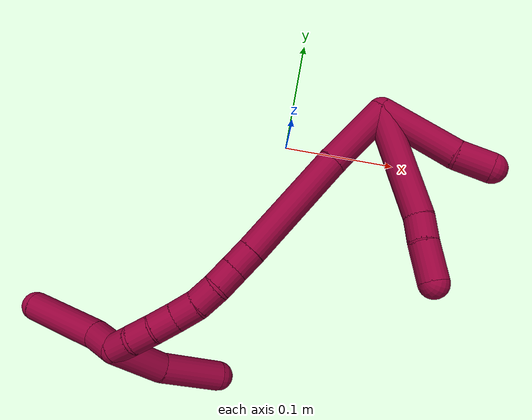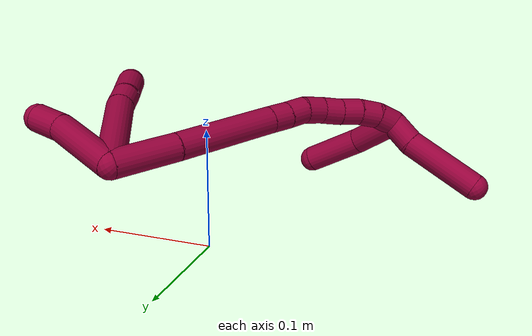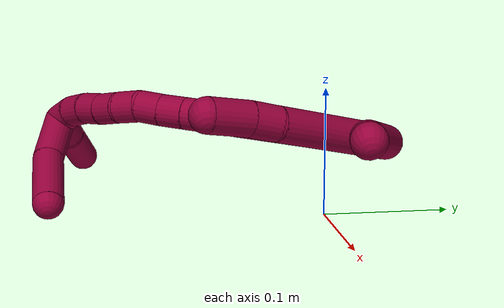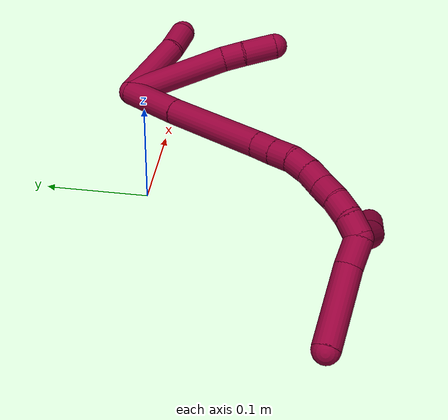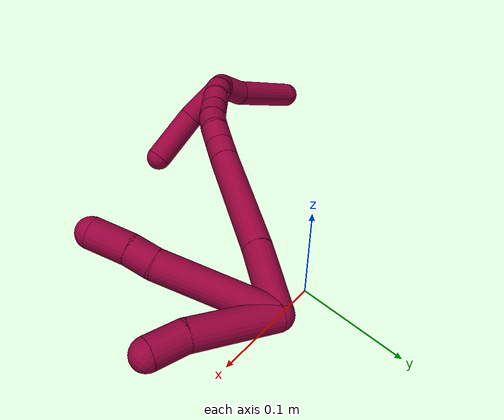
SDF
<sdf version="1.7">
 <world name="default">
  <model name="8">
   <static>0</static>
   <link name="8">
    <collision name="collision-cylinder-e_1_2_8">
     <pose>0.017107 -0.043863 -0.011558 1.82845 0.36065 0.464596</pose>
     <geometry><cylinder><radius>0.0125</radius><length>0.096957</length></cylinder></geometry>
     <surface>
      <friction><ode><mu>1.16</mu><mu2>1.16</mu2><slip1>0</slip1><slip2>0</slip2></ode></friction>
      <contact><ode><kp>1e+06</kp><kd>1</kd><max_vel>0</max_vel><min_depth>0.001</min_depth></ode></contact>
     </surface>
    </collision>
    <visual name="visual-cylinder-e_1_2_8">
     <pose>0.017107 -0.043863 -0.011558 1.82845 0.36065 0.464596</pose>
     <geometry><cylinder><radius>0.0125</radius><length>0.096957</length></cylinder></geometry>
     <material><ambient>0.584314 0 0.227451 1</ambient></material>
    </visual>
    <collision name="collision-cylinder-e_2_8_9">
     <pose>0.037082 -0.097792 -0.024255 1.68344 0.275811 0.308276</pose>
     <geometry><cylinder><radius>0.0125</radius><length>0.021057</length></cylinder></geometry>
     <surface>
      <friction><ode><mu>1.16</mu><mu2>1.16</mu2><slip1>0</slip1><slip2>0</slip2></ode></friction>
      <contact><ode><kp>1e+06</kp><kd>1</kd><max_vel>0</max_vel><min_depth>0.001</min_depth></ode></contact>
     </surface>
    </collision>
    <visual name="visual-cylinder-e_2_8_9">
     <pose>0.037082 -0.097792 -0.024255 1.68344 0.275811 0.308276</pose>
     <geometry><cylinder><radius>0.0125</radius><length>0.021057</length></cylinder></geometry>
     <material><ambient>0.584314 0 0.227451 1</ambient></material>
    </visual>
    <collision name="collision-cylinder-e_3_9_6">
     <pose>0.04399 -0.122901 -0.029019 1.80728 0.255432 0.323231</pose>
     <geometry><cylinder><radius>0.0125</radius><length>0.031985</length></cylinder></geometry>
     <surface>
      <friction><ode><mu>1.16</mu><mu2>1.16</mu2><slip1>0</slip1><slip2>0</slip2></ode></friction>
      <contact><ode><kp>1e+06</kp><kd>1</kd><max_vel>0</max_vel><min_depth>0.001</min_depth></ode></contact>
     </surface>
    </collision>
    <visual name="visual-cylinder-e_3_9_6">
     <pose>0.04399 -0.122901 -0.029019 1.80728 0.255432 0.323231</pose>
     <geometry><cylinder><radius>0.0125</radius><length>0.031985</length></cylinder></geometry>
     <material><ambient>0.584314 0 0.227451 1</ambient></material>
    </visual>
    <collision name="collision-cylinder-e_1_2_10">
     <pose>0.022282 -0.015617 -0.022817 2.5414 0.678297 1.70149</pose>
     <geometry><cylinder><radius>0.0125</radius><length>0.071021</length></cylinder></geometry>
     <surface>
      <friction><ode><mu>1.16</mu><mu2>1.16</mu2><slip1>0</slip1><slip2>0</slip2></ode></friction>
      <contact><ode><kp>1e+06</kp><kd>1</kd><max_vel>0</max_vel><min_depth>0.001</min_depth></ode></contact>
     </surface>
    </collision>
    <visual name="visual-cylinder-e_1_2_10">
     <pose>0.022282 -0.015617 -0.022817 2.5414 0.678297 1.70149</pose>
     <geometry><cylinder><radius>0.0125</radius><length>0.071021</length></cylinder></geometry>
     <material><ambient>0.584314 0 0.227451 1</ambient></material>
    </visual>
    <collision name="collision-cylinder-e_2_10_5">
     <pose>0.053468 -0.034896 -0.056462 2.81539 0.661835 2.24816</pose>
     <geometry><cylinder><radius>0.0125</radius><length>0.028979</length></cylinder></geometry>
     <surface>
      <friction><ode><mu>1.16</mu><mu2>1.16</mu2><slip1>0</slip1><slip2>0</slip2></ode></friction>
      <contact><ode><kp>1e+06</kp><kd>1</kd><max_vel>0</max_vel><min_depth>0.001</min_depth></ode></contact>
     </surface>
    </collision>
    <visual name="visual-cylinder-e_2_10_5">
     <pose>0.053468 -0.034896 -0.056462 2.81539 0.661835 2.24816</pose>
     <geometry><cylinder><radius>0.0125</radius><length>0.028979</length></cylinder></geometry>
     <material><ambient>0.584314 0 0.227451 1</ambient></material>
    </visual>
    <collision name="collision-cylinder-e_1_2_11">
     <pose>-0.009168 -0.024946 0.014816 1.03484 -0.306063 -0.175118</pose>
     <geometry><cylinder><radius>0.0125</radius><length>0.060856</length></cylinder></geometry>
     <surface>
      <friction><ode><mu>1.16</mu><mu2>1.16</mu2><slip1>0</slip1><slip2>0</slip2></ode></friction>
      <contact><ode><kp>1e+06</kp><kd>1</kd><max_vel>0</max_vel><min_depth>0.001</min_depth></ode></contact>
     </surface>
    </collision>
    <visual name="visual-cylinder-e_1_2_11">
     <pose>-0.009168 -0.024946 0.014816 1.03484 -0.306063 -0.175118</pose>
     <geometry><cylinder><radius>0.0125</radius><length>0.060856</length></cylinder></geometry>
     <material><ambient>0.584314 0 0.227451 1</ambient></material>
    </visual>
    <collision name="collision-cylinder-e_2_11_12">
     <pose>-0.032119 -0.091762 0.052059 1.07907 -0.282412 -0.169831</pose>
     <geometry><cylinder><radius>0.0125</radius><length>0.098915</length></cylinder></geometry>
     <surface>
      <friction><ode><mu>1.16</mu><mu2>1.16</mu2><slip1>0</slip1><slip2>0</slip2></ode></friction>
      <contact><ode><kp>1e+06</kp><kd>1</kd><max_vel>0</max_vel><min_depth>0.001</min_depth></ode></contact>
     </surface>
    </collision>
    <visual name="visual-cylinder-e_2_11_12">
     <pose>-0.032119 -0.091762 0.052059 1.07907 -0.282412 -0.169831</pose>
     <geometry><cylinder><radius>0.0125</radius><length>0.098915</length></cylinder></geometry>
     <material><ambient>0.584314 0 0.227451 1</ambient></material>
    </visual>
    <collision name="collision-cylinder-e_3_12_13">
     <pose>-0.048908 -0.141981 0.079256 1.05161 -0.303032 -0.176744</pose>
     <geometry><cylinder><radius>0.0125</radius><length>0.02015</length></cylinder></geometry>
     <surface>
      <friction><ode><mu>1.16</mu><mu2>1.16</mu2><slip1>0</slip1><slip2>0</slip2></ode></friction>
      <contact><ode><kp>1e+06</kp><kd>1</kd><max_vel>0</max_vel><min_depth>0.001</min_depth></ode></contact>
     </surface>
    </collision>
    <visual name="visual-cylinder-e_3_12_13">
     <pose>-0.048908 -0.141981 0.079256 1.05161 -0.303032 -0.176744</pose>
     <geometry><cylinder><radius>0.0125</radius><length>0.02015</length></cylinder></geometry>
     <material><ambient>0.584314 0 0.227451 1</ambient></material>
    </visual>
    <collision name="collision-cylinder-e_4_13_14">
     <pose>-0.054546 -0.158652 0.088927 1.03871 -0.266007 -0.152684</pose>
     <geometry><cylinder><radius>0.0125</radius><length>0.020019</length></cylinder></geometry>
     <surface>
      <friction><ode><mu>1.16</mu><mu2>1.16</mu2><slip1>0</slip1><slip2>0</slip2></ode></friction>
      <contact><ode><kp>1e+06</kp><kd>1</kd><max_vel>0</max_vel><min_depth>0.001</min_depth></ode></contact>
     </surface>
    </collision>
    <visual name="visual-cylinder-e_4_13_14">
     <pose>-0.054546 -0.158652 0.088927 1.03871 -0.266007 -0.152684</pose>
     <geometry><cylinder><radius>0.0125</radius><length>0.020019</length></cylinder></geometry>
     <material><ambient>0.584314 0 0.227451 1</ambient></material>
    </visual>
    <collision name="collision-cylinder-e_5_14_15">
     <pose>-0.062134 -0.174545 0.098153 1.05156 -0.516898 -0.304424</pose>
     <geometry><cylinder><radius>0.0125</radius><length>0.02006</length></cylinder></geometry>
     <surface>
      <friction><ode><mu>1.16</mu><mu2>1.16</mu2><slip1>0</slip1><slip2>0</slip2></ode></friction>
      <contact><ode><kp>1e+06</kp><kd>1</kd><max_vel>0</max_vel><min_depth>0.001</min_depth></ode></contact>
     </surface>
    </collision>
    <visual name="visual-cylinder-e_5_14_15">
     <pose>-0.062134 -0.174545 0.098153 1.05156 -0.516898 -0.304424</pose>
     <geometry><cylinder><radius>0.0125</radius><length>0.02006</length></cylinder></geometry>
     <material><ambient>0.584314 0 0.227451 1</ambient></material>
    </visual>
    <collision name="collision-cylinder-e_6_15_16">
     <pose>-0.072937 -0.188233 0.107809 0.85427 -0.624423 -0.291734</pose>
     <geometry><cylinder><radius>0.0125</radius><length>0.02</length></cylinder></geometry>
     <surface>
      <friction><ode><mu>1.16</mu><mu2>1.16</mu2><slip1>0</slip1><slip2>0</slip2></ode></friction>
      <contact><ode><kp>1e+06</kp><kd>1</kd><max_vel>0</max_vel><min_depth>0.001</min_depth></ode></contact>
     </surface>
    </collision>
    <visual name="visual-cylinder-e_6_15_16">
     <pose>-0.072937 -0.188233 0.107809 0.85427 -0.624423 -0.291734</pose>
     <geometry><cylinder><radius>0.0125</radius><length>0.02</length></cylinder></geometry>
     <material><ambient>0.584314 0 0.227451 1</ambient></material>
    </visual>
    <collision name="collision-cylinder-e_7_16_17">
     <pose>-0.08397 -0.200414 0.119164 0.788391 -0.545372 -0.231611</pose>
     <geometry><cylinder><radius>0.0125</radius><length>0.02</length></cylinder></geometry>
     <surface>
      <friction><ode><mu>1.16</mu><mu2>1.16</mu2><slip1>0</slip1><slip2>0</slip2></ode></friction>
      <contact><ode><kp>1e+06</kp><kd>1</kd><max_vel>0</max_vel><min_depth>0.001</min_depth></ode></contact>
     </surface>
    </collision>
    <visual name="visual-cylinder-e_7_16_17">
     <pose>-0.08397 -0.200414 0.119164 0.788391 -0.545372 -0.231611</pose>
     <geometry><cylinder><radius>0.0125</radius><length>0.02</length></cylinder></geometry>
     <material><ambient>0.584314 0 0.227451 1</ambient></material>
    </visual>
    <collision name="collision-cylinder-e_8_17_18">
     <pose>-0.095689 -0.211988 0.130386 0.814867 -0.711737 -0.318123</pose>
     <geometry><cylinder><radius>0.0125</radius><length>0.02</length></cylinder></geometry>
     <surface>
      <friction><ode><mu>1.16</mu><mu2>1.16</mu2><slip1>0</slip1><slip2>0</slip2></ode></friction>
      <contact><ode><kp>1e+06</kp><kd>1</kd><max_vel>0</max_vel><min_depth>0.001</min_depth></ode></contact>
     </surface>
    </collision>
    <visual name="visual-cylinder-e_8_17_18">
     <pose>-0.095689 -0.211988 0.130386 0.814867 -0.711737 -0.318123</pose>
     <geometry><cylinder><radius>0.0125</radius><length>0.02</length></cylinder></geometry>
     <material><ambient>0.584314 0 0.227451 1</ambient></material>
    </visual>
    <collision name="collision-cylinder-e_9_18_1">
     <pose>-0.110346 -0.22215 0.139091 0.924347 -0.948531 -0.500722</pose>
     <geometry><cylinder><radius>0.0125</radius><length>0.02</length></cylinder></geometry>
     <surface>
      <friction><ode><mu>1.16</mu><mu2>1.16</mu2><slip1>0</slip1><slip2>0</slip2></ode></friction>
      <contact><ode><kp>1e+06</kp><kd>1</kd><max_vel>0</max_vel><min_depth>0.001</min_depth></ode></contact>
     </surface>
    </collision>
    <visual name="visual-cylinder-e_9_18_1">
     <pose>-0.110346 -0.22215 0.139091 0.924347 -0.948531 -0.500722</pose>
     <geometry><cylinder><radius>0.0125</radius><length>0.02</length></cylinder></geometry>
     <material><ambient>0.584314 0 0.227451 1</ambient></material>
    </visual>
    <collision name="collision-cylinder-e_1_1_19">
     <pose>-0.119683 -0.231424 0.120047 2.93953 -0.052528 -0.507118</pose>
     <geometry><cylinder><radius>0.0125</radius><length>0.046112</length></cylinder></geometry>
     <surface>
      <friction><ode><mu>1.16</mu><mu2>1.16</mu2><slip1>0</slip1><slip2>0</slip2></ode></friction>
      <contact><ode><kp>1e+06</kp><kd>1</kd><max_vel>0</max_vel><min_depth>0.001</min_depth></ode></contact>
     </surface>
    </collision>
    <visual name="visual-cylinder-e_1_1_19">
     <pose>-0.119683 -0.231424 0.120047 2.93953 -0.052528 -0.507118</pose>
     <geometry><cylinder><radius>0.0125</radius><length>0.046112</length></cylinder></geometry>
     <material><ambient>0.584314 0 0.227451 1</ambient></material>
    </visual>
    <collision name="collision-cylinder-e_2_19_4">
     <pose>-0.118964 -0.235746 0.070618 -3.13048 0.071639 -2.83381</pose>
     <geometry><cylinder><radius>0.0125</radius><length>0.053888</length></cylinder></geometry>
     <surface>
      <friction><ode><mu>1.16</mu><mu2>1.16</mu2><slip1>0</slip1><slip2>0</slip2></ode></friction>
      <contact><ode><kp>1e+06</kp><kd>1</kd><max_vel>0</max_vel><min_depth>0.001</min_depth></ode></contact>
     </surface>
    </collision>
    <visual name="visual-cylinder-e_2_19_4">
     <pose>-0.118964 -0.235746 0.070618 -3.13048 0.071639 -2.83381</pose>
     <geometry><cylinder><radius>0.0125</radius><length>0.053888</length></cylinder></geometry>
     <material><ambient>0.584314 0 0.227451 1</ambient></material>
    </visual>
    <collision name="collision-cylinder-e_1_1_20">
     <pose>-0.130401 -0.222714 0.146755 -0.777635 -1.11634 0.50086</pose>
     <geometry><cylinder><radius>0.0125</radius><length>0.026553</length></cylinder></geometry>
     <surface>
      <friction><ode><mu>1.16</mu><mu2>1.16</mu2><slip1>0</slip1><slip2>0</slip2></ode></friction>
      <contact><ode><kp>1e+06</kp><kd>1</kd><max_vel>0</max_vel><min_depth>0.001</min_depth></ode></contact>
     </surface>
    </collision>
    <visual name="visual-cylinder-e_1_1_20">
     <pose>-0.130401 -0.222714 0.146755 -0.777635 -1.11634 0.50086</pose>
     <geometry><cylinder><radius>0.0125</radius><length>0.026553</length></cylinder></geometry>
     <material><ambient>0.584314 0 0.227451 1</ambient></material>
    </visual>
    <collision name="collision-cylinder-e_2_20_3">
     <pose>-0.172783 -0.210854 0.169904 -0.388337 -0.977756 0.208452</pose>
     <geometry><cylinder><radius>0.0125</radius><length>0.073447</length></cylinder></geometry>
     <surface>
      <friction><ode><mu>1.16</mu><mu2>1.16</mu2><slip1>0</slip1><slip2>0</slip2></ode></friction>
      <contact><ode><kp>1e+06</kp><kd>1</kd><max_vel>0</max_vel><min_depth>0.001</min_depth></ode></contact>
     </surface>
    </collision>
    <visual name="visual-cylinder-e_2_20_3">
     <pose>-0.172783 -0.210854 0.169904 -0.388337 -0.977756 0.208452</pose>
     <geometry><cylinder><radius>0.0125</radius><length>0.073447</length></cylinder></geometry>
     <material><ambient>0.584314 0 0.227451 1</ambient></material>
    </visual>
    <collision name="collision-sphere-3">
     <pose>-0.203235 -0.203082 0.1889 0 -0 0</pose>
     <geometry><sphere><radius>0.0125</radius></sphere></geometry>
     <surface>
      <friction><ode><mu>1.16</mu><mu2>1.16</mu2><slip1>0</slip1><slip2>0</slip2></ode></friction>
      <contact><ode><kp>1e+06</kp><kd>1</kd><max_vel>0</max_vel><min_depth>0.001</min_depth></ode></contact>
     </surface>
    </collision>
    <visual name="visual-sphere-3">
     <pose>-0.203235 -0.203082 0.1889 0 -0 0</pose>
     <geometry><sphere><radius>0.0125</radius></sphere></geometry>
     <material><ambient>0.584314 0 0.227451 1</ambient></material>
    </visual>
    <collision name="collision-sphere-20">
     <pose>-0.14233 -0.218625 0.150908 0 -0 0</pose>
     <geometry><sphere><radius>0.0125</radius></sphere></geometry>
     <surface>
      <friction><ode><mu>1.16</mu><mu2>1.16</mu2><slip1>0</slip1><slip2>0</slip2></ode></friction>
      <contact><ode><kp>1e+06</kp><kd>1</kd><max_vel>0</max_vel><min_depth>0.001</min_depth></ode></contact>
     </surface>
    </collision>
    <visual name="visual-sphere-20">
     <pose>-0.14233 -0.218625 0.150908 0 -0 0</pose>
     <geometry><sphere><radius>0.0125</radius></sphere></geometry>
     <material><ambient>0.584314 0 0.227451 1</ambient></material>
    </visual>
    <collision name="collision-sphere-4">
     <pose>-0.117036 -0.235447 0.043744 0 -0 0</pose>
     <geometry><sphere><radius>0.0125</radius></sphere></geometry>
     <surface>
      <friction><ode><mu>1.16</mu><mu2>1.16</mu2><slip1>0</slip1><slip2>0</slip2></ode></friction>
      <contact><ode><kp>1e+06</kp><kd>1</kd><max_vel>0</max_vel><min_depth>0.001</min_depth></ode></contact>
     </surface>
    </collision>
    <visual name="visual-sphere-4">
     <pose>-0.117036 -0.235447 0.043744 0 -0 0</pose>
     <geometry><sphere><radius>0.0125</radius></sphere></geometry>
     <material><ambient>0.584314 0 0.227451 1</ambient></material>
    </visual>
    <collision name="collision-sphere-5">
     <pose>0.062373 -0.038559 -0.06729 0 -0 0</pose>
     <geometry><sphere><radius>0.0125</radius></sphere></geometry>
     <surface>
      <friction><ode><mu>1.16</mu><mu2>1.16</mu2><slip1>0</slip1><slip2>0</slip2></ode></friction>
      <contact><ode><kp>1e+06</kp><kd>1</kd><max_vel>0</max_vel><min_depth>0.001</min_depth></ode></contact>
     </surface>
    </collision>
    <visual name="visual-sphere-5">
     <pose>0.062373 -0.038559 -0.06729 0 -0 0</pose>
     <geometry><sphere><radius>0.0125</radius></sphere></geometry>
     <material><ambient>0.584314 0 0.227451 1</ambient></material>
    </visual>
    <collision name="collision-sphere-10">
     <pose>0.044563 -0.031234 -0.045635 0 -0 0</pose>
     <geometry><sphere><radius>0.0125</radius></sphere></geometry>
     <surface>
      <friction><ode><mu>1.16</mu><mu2>1.16</mu2><slip1>0</slip1><slip2>0</slip2></ode></friction>
      <contact><ode><kp>1e+06</kp><kd>1</kd><max_vel>0</max_vel><min_depth>0.001</min_depth></ode></contact>
     </surface>
    </collision>
    <visual name="visual-sphere-10">
     <pose>0.044563 -0.031234 -0.045635 0 -0 0</pose>
     <geometry><sphere><radius>0.0125</radius></sphere></geometry>
     <material><ambient>0.584314 0 0.227451 1</ambient></material>
    </visual>
    <collision name="collision-sphere-6">
     <pose>0.048031 -0.137944 -0.032645 0 -0 0</pose>
     <geometry><sphere><radius>0.0125</radius></sphere></geometry>
     <surface>
      <friction><ode><mu>1.16</mu><mu2>1.16</mu2><slip1>0</slip1><slip2>0</slip2></ode></friction>
      <contact><ode><kp>1e+06</kp><kd>1</kd><max_vel>0</max_vel><min_depth>0.001</min_depth></ode></contact>
     </surface>
    </collision>
    <visual name="visual-sphere-6">
     <pose>0.048031 -0.137944 -0.032645 0 -0 0</pose>
     <geometry><sphere><radius>0.0125</radius></sphere></geometry>
     <material><ambient>0.584314 0 0.227451 1</ambient></material>
    </visual>
    <collision name="collision-sphere-9">
     <pose>0.039949 -0.107858 -0.025394 0 -0 0</pose>
     <geometry><sphere><radius>0.0125</radius></sphere></geometry>
     <surface>
      <friction><ode><mu>1.16</mu><mu2>1.16</mu2><slip1>0</slip1><slip2>0</slip2></ode></friction>
      <contact><ode><kp>1e+06</kp><kd>1</kd><max_vel>0</max_vel><min_depth>0.001</min_depth></ode></contact>
     </surface>
    </collision>
    <visual name="visual-sphere-9">
     <pose>0.039949 -0.107858 -0.025394 0 -0 0</pose>
     <geometry><sphere><radius>0.0125</radius></sphere></geometry>
     <material><ambient>0.584314 0 0.227451 1</ambient></material>
    </visual>
    <collision name="collision-sphere-2">
     <geometry><sphere><radius>0.0125</radius></sphere></geometry>
     <surface>
      <friction><ode><mu>1.16</mu><mu2>1.16</mu2><slip1>0</slip1><slip2>0</slip2></ode></friction>
      <contact><ode><kp>1e+06</kp><kd>1</kd><max_vel>0</max_vel><min_depth>0.001</min_depth></ode></contact>
     </surface>
    </collision>
    <visual name="visual-sphere-2">
     <geometry><sphere><radius>0.0125</radius></sphere></geometry>
     <material><ambient>0.584314 0 0.227451 1</ambient></material>
    </visual>
    <collision name="collision-sphere-19">
     <pose>-0.120893 -0.236044 0.097491 0 -0 0</pose>
     <geometry><sphere><radius>0.0125</radius></sphere></geometry>
     <surface>
      <friction><ode><mu>1.16</mu><mu2>1.16</mu2><slip1>0</slip1><slip2>0</slip2></ode></friction>
      <contact><ode><kp>1e+06</kp><kd>1</kd><max_vel>0</max_vel><min_depth>0.001</min_depth></ode></contact>
     </surface>
    </collision>
    <visual name="visual-sphere-19">
     <pose>-0.120893 -0.236044 0.097491 0 -0 0</pose>
     <geometry><sphere><radius>0.0125</radius></sphere></geometry>
     <material><ambient>0.584314 0 0.227451 1</ambient></material>
    </visual>
    <collision name="collision-sphere-8">
     <pose>0.034215 -0.087725 -0.023117 0 -0 0</pose>
     <geometry><sphere><radius>0.0125</radius></sphere></geometry>
     <surface>
      <friction><ode><mu>1.16</mu><mu2>1.16</mu2><slip1>0</slip1><slip2>0</slip2></ode></friction>
      <contact><ode><kp>1e+06</kp><kd>1</kd><max_vel>0</max_vel><min_depth>0.001</min_depth></ode></contact>
     </surface>
    </collision>
    <visual name="visual-sphere-8">
     <pose>0.034215 -0.087725 -0.023117 0 -0 0</pose>
     <geometry><sphere><radius>0.0125</radius></sphere></geometry>
     <material><ambient>0.584314 0 0.227451 1</ambient></material>
    </visual>
    <collision name="collision-sphere-11">
     <pose>-0.018336 -0.049891 0.029632 0 -0 0</pose>
     <geometry><sphere><radius>0.0125</radius></sphere></geometry>
     <surface>
      <friction><ode><mu>1.16</mu><mu2>1.16</mu2><slip1>0</slip1><slip2>0</slip2></ode></friction>
      <contact><ode><kp>1e+06</kp><kd>1</kd><max_vel>0</max_vel><min_depth>0.001</min_depth></ode></contact>
     </surface>
    </collision>
    <visual name="visual-sphere-11">
     <pose>-0.018336 -0.049891 0.029632 0 -0 0</pose>
     <geometry><sphere><radius>0.0125</radius></sphere></geometry>
     <material><ambient>0.584314 0 0.227451 1</ambient></material>
    </visual>
    <collision name="collision-sphere-12">
     <pose>-0.045901 -0.133632 0.074485 0 -0 0</pose>
     <geometry><sphere><radius>0.0125</radius></sphere></geometry>
     <surface>
      <friction><ode><mu>1.16</mu><mu2>1.16</mu2><slip1>0</slip1><slip2>0</slip2></ode></friction>
      <contact><ode><kp>1e+06</kp><kd>1</kd><max_vel>0</max_vel><min_depth>0.001</min_depth></ode></contact>
     </surface>
    </collision>
    <visual name="visual-sphere-12">
     <pose>-0.045901 -0.133632 0.074485 0 -0 0</pose>
     <geometry><sphere><radius>0.0125</radius></sphere></geometry>
     <material><ambient>0.584314 0 0.227451 1</ambient></material>
    </visual>
    <collision name="collision-sphere-13">
     <pose>-0.051914 -0.150329 0.084027 0 -0 0</pose>
     <geometry><sphere><radius>0.0125</radius></sphere></geometry>
     <surface>
      <friction><ode><mu>1.16</mu><mu2>1.16</mu2><slip1>0</slip1><slip2>0</slip2></ode></friction>
      <contact><ode><kp>1e+06</kp><kd>1</kd><max_vel>0</max_vel><min_depth>0.001</min_depth></ode></contact>
     </surface>
    </collision>
    <visual name="visual-sphere-13">
     <pose>-0.051914 -0.150329 0.084027 0 -0 0</pose>
     <geometry><sphere><radius>0.0125</radius></sphere></geometry>
     <material><ambient>0.584314 0 0.227451 1</ambient></material>
    </visual>
    <collision name="collision-sphere-14">
     <pose>-0.057177 -0.166974 0.093826 0 -0 0</pose>
     <geometry><sphere><radius>0.0125</radius></sphere></geometry>
     <surface>
      <friction><ode><mu>1.16</mu><mu2>1.16</mu2><slip1>0</slip1><slip2>0</slip2></ode></friction>
      <contact><ode><kp>1e+06</kp><kd>1</kd><max_vel>0</max_vel><min_depth>0.001</min_depth></ode></contact>
     </surface>
    </collision>
    <visual name="visual-sphere-14">
     <pose>-0.057177 -0.166974 0.093826 0 -0 0</pose>
     <geometry><sphere><radius>0.0125</radius></sphere></geometry>
     <material><ambient>0.584314 0 0.227451 1</ambient></material>
    </visual>
    <collision name="collision-sphere-15">
     <pose>-0.06709 -0.182115 0.10248 0 -0 0</pose>
     <geometry><sphere><radius>0.0125</radius></sphere></geometry>
     <surface>
      <friction><ode><mu>1.16</mu><mu2>1.16</mu2><slip1>0</slip1><slip2>0</slip2></ode></friction>
      <contact><ode><kp>1e+06</kp><kd>1</kd><max_vel>0</max_vel><min_depth>0.001</min_depth></ode></contact>
     </surface>
    </collision>
    <visual name="visual-sphere-15">
     <pose>-0.06709 -0.182115 0.10248 0 -0 0</pose>
     <geometry><sphere><radius>0.0125</radius></sphere></geometry>
     <material><ambient>0.584314 0 0.227451 1</ambient></material>
    </visual>
    <collision name="collision-sphere-16">
     <pose>-0.078783 -0.194351 0.113137 0 -0 0</pose>
     <geometry><sphere><radius>0.0125</radius></sphere></geometry>
     <surface>
      <friction><ode><mu>1.16</mu><mu2>1.16</mu2><slip1>0</slip1><slip2>0</slip2></ode></friction>
      <contact><ode><kp>1e+06</kp><kd>1</kd><max_vel>0</max_vel><min_depth>0.001</min_depth></ode></contact>
     </surface>
    </collision>
    <visual name="visual-sphere-16">
     <pose>-0.078783 -0.194351 0.113137 0 -0 0</pose>
     <geometry><sphere><radius>0.0125</radius></sphere></geometry>
     <material><ambient>0.584314 0 0.227451 1</ambient></material>
    </visual>
    <collision name="collision-sphere-17">
     <pose>-0.089158 -0.206478 0.125191 0 -0 0</pose>
     <geometry><sphere><radius>0.0125</radius></sphere></geometry>
     <surface>
      <friction><ode><mu>1.16</mu><mu2>1.16</mu2><slip1>0</slip1><slip2>0</slip2></ode></friction>
      <contact><ode><kp>1e+06</kp><kd>1</kd><max_vel>0</max_vel><min_depth>0.001</min_depth></ode></contact>
     </surface>
    </collision>
    <visual name="visual-sphere-17">
     <pose>-0.089158 -0.206478 0.125191 0 -0 0</pose>
     <geometry><sphere><radius>0.0125</radius></sphere></geometry>
     <material><ambient>0.584314 0 0.227451 1</ambient></material>
    </visual>
    <collision name="collision-sphere-18">
     <pose>-0.102221 -0.217498 0.13558 0 -0 0</pose>
     <geometry><sphere><radius>0.0125</radius></sphere></geometry>
     <surface>
      <friction><ode><mu>1.16</mu><mu2>1.16</mu2><slip1>0</slip1><slip2>0</slip2></ode></friction>
      <contact><ode><kp>1e+06</kp><kd>1</kd><max_vel>0</max_vel><min_depth>0.001</min_depth></ode></contact>
     </surface>
    </collision>
    <visual name="visual-sphere-18">
     <pose>-0.102221 -0.217498 0.13558 0 -0 0</pose>
     <geometry><sphere><radius>0.0125</radius></sphere></geometry>
     <material><ambient>0.584314 0 0.227451 1</ambient></material>
    </visual>
    <collision name="collision-sphere-1">
     <pose>-0.118472 -0.226803 0.142602 0 -0 0</pose>
     <geometry><sphere><radius>0.0125</radius></sphere></geometry>
     <surface>
      <friction><ode><mu>1.16</mu><mu2>1.16</mu2><slip1>0</slip1><slip2>0</slip2></ode></friction>
      <contact><ode><kp>1e+06</kp><kd>1</kd><max_vel>0</max_vel><min_depth>0.001</min_depth></ode></contact>
     </surface>
    </collision>
    <visual name="visual-sphere-1">
     <pose>-0.118472 -0.226803 0.142602 0 -0 0</pose>
     <geometry><sphere><radius>0.0125</radius></sphere></geometry>
     <material><ambient>0.584314 0 0.227451 1</ambient></material>
    </visual>
    <inertial>
     <pose>-0.047229 -0.12497 0.054969 0 -0 0</pose>
     <mass>0.75</mass>
     <inertia>
      <ixx>0.000221</ixx>
      <ixy>0</ixy>
      <ixz>0</ixz>
      <iyy>0.000123</iyy>
      <iyz>0</iyz>
      <izz>0.000196</izz>
     </inertia>
    </inertial>
   </link>
   <pose>0.072393 0.027997 0.071754 -0.12922 -1.01196 0.124585</pose>
  </model>
 </world>
</sdf>
